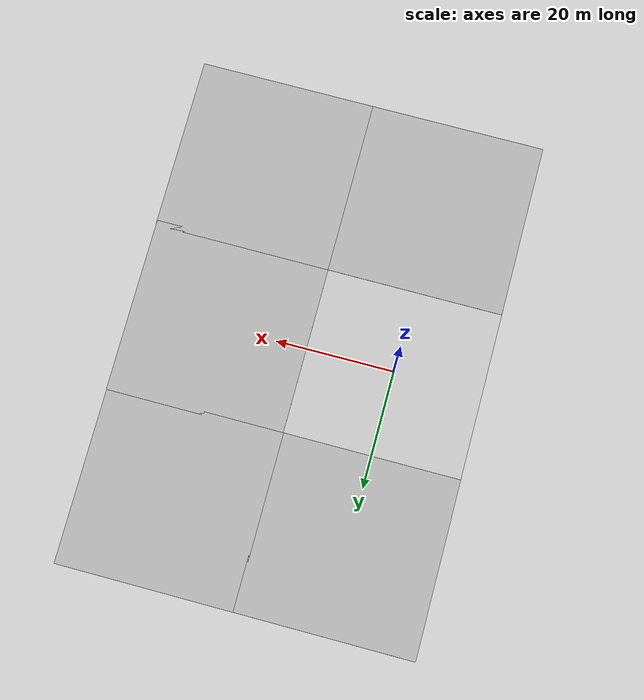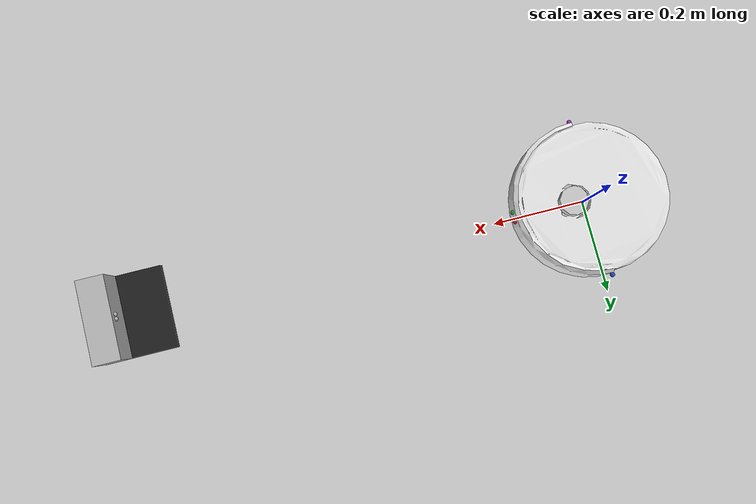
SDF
<sdf version="1.7">
 <world name="default">
  <model name="ISCAS_groundplane">
   <static>1</static>
   <link name="link">
    <collision name="collision">
     <geometry><plane><normal>0 0 1</normal><size>30 30</size></plane></geometry>
     <surface><friction><ode><mu>100</mu><mu2>50</mu2></ode></friction></surface>
    </collision>
    <visual name="visual">
     <cast_shadows>0</cast_shadows>
     <geometry><plane><normal>0 0 1</normal><size>30 30</size></plane></geometry>
     <material>
      <script>
       <uri>model://ISCAS_groundplane/materials/scripts</uri>
       <uri>model://ISCAS_groundplane/materials/textures</uri>
       <name>ISCAS_groundplane/Image</name>
      </script>
     </material>
    </visual>
   </link>
  </model>
  <light name="sun" type="directional">
   <pose>0 0 10 0 -0 0</pose>
   <diffuse>0.8 0.8 0.8 1</diffuse>
   <specular>0.2 0.2 0.2 1</specular>
   <attenuation>
    <range>1000</range>
    <constant>0.9</constant>
    <linear>0.01</linear>
    <quadratic>0.001</quadratic>
   </attenuation>
   <direction>-0.5 0.1 -0.9</direction>
   <spot><inner_angle>0</inner_angle><outer_angle>0</outer_angle><falloff>0</falloff></spot>
  </light>
  <gravity>0 0 -9.8</gravity>
  <magnetic_field>6e-06 2.3e-05 -4.2e-05</magnetic_field>
  <atmosphere type="adiabatic"/>
  <physics type="ode">
   <max_step_size>0.001</max_step_size>
   <real_time_factor>1</real_time_factor>
   <real_time_update_rate>1000</real_time_update_rate>
  </physics>
  <scene><ambient>0.4 0.4 0.4 1</ambient><background>0.7 0.7 0.7 1</background><shadows>1</shadows></scene>
  <spherical_coordinates>
   <surface_model>EARTH_WGS84</surface_model>
   <latitude_deg>0</latitude_deg>
   <longitude_deg>0</longitude_deg>
   <elevation>0</elevation>
   <heading_deg>0</heading_deg>
  </spherical_coordinates>
  <model name="dock">
   <link name="bottom">
    <inertial>
     <pose>0 0.01875 0 0 -0 0</pose>
     <mass>0.8</mass>
     <inertia>
      <ixx>0.00279292</ixx>
      <ixy>0</ixy>
      <ixz>0</ixz>
      <iyy>0.00132083</iyy>
      <iyz>0</iyz>
      <izz>0.00378542</izz>
     </inertia>
    </inertial>
    <collision name="bottom_collision">
     <pose>0 0 0.005 0 -0 0</pose>
     <geometry><box><size>0.18 0.16 0.01</size></box></geometry>
     <surface>
      <contact><ode><kp>1000</kp><kd>1</kd><min_depth>0.001</min_depth></ode></contact>
      <friction><ode><mu>20</mu><mu2>10</mu2></ode></friction>
     </surface>
    </collision>
    <collision name="bottom_fixed_joint_lump__base_collision_1">
     <pose>0 0.05 0.04 0 -0 0</pose>
     <geometry><box><size>0.18 0.06 0.08</size></box></geometry>
    </collision>
    <visual name="bottom_visual">
     <pose>0 0 0.005 0 -0 0</pose>
     <geometry><box><size>0.18 0.16 0.01</size></box></geometry>
     <material>
      <script><name>Gazebo/Black</name><uri>file://media/materials/scripts/gazebo.material</uri></script>
     </material>
    </visual>
    <visual name="bottom_fixed_joint_lump__base_visual_1">
     <pose>0 0.05 0.04 0 -0 0</pose>
     <geometry><box><size>0.18 0.06 0.08</size></box></geometry>
    </visual>
    <visual name="bottom_fixed_joint_lump__dock_right_visual_2">
     <pose>0.005 0.02 0.06 0 0 -1.57</pose>
     <geometry><sphere><radius>0.005</radius></sphere></geometry>
    </visual>
    <visual name="bottom_fixed_joint_lump__dock_left_visual_3">
     <pose>-0.005 0.02 0.06 0 0 -1.57</pose>
     <geometry><sphere><radius>0.005</radius></sphere></geometry>
    </visual>
    <sensor name="ir_right" type="camera">
     <camera>
      <clip><near>0.02</near><far>2.5</far></clip>
      <image><width>20</width><height>20</height></image>
      <horizontal_fov>0.02</horizontal_fov>
      <aspect_ratio>1</aspect_ratio>
     </camera>
     <visualize>0</visualize>
     <always_on>1</always_on>
     <update_rate>10</update_rate>
     <topic>dockir/A3</topic>
     <plugin name="camera_r" filename="libgazebo_ros_camera.so">
      <alwaysOn>1</alwaysOn>
      <updateRate>10.0</updateRate>
      <cameraName>dock/right</cameraName>
      <imageTopicName>image_raw</imageTopicName>
      <cameraInfoTopicName>camera_info</cameraInfoTopicName>
      <frameName>dock_right</frameName>
      <robotNamespace>/</robotNamespace>
     </plugin>
     <pose>0.005 0.02 0.06 0 0 -1.57</pose>
    </sensor>
    <sensor name="ir_left" type="camera">
     <camera>
      <clip><near>0.02</near><far>2.5</far></clip>
      <image><width>20</width><height>20</height></image>
      <horizontal_fov>0.02</horizontal_fov>
      <aspect_ratio>1</aspect_ratio>
     </camera>
     <visualize>1</visualize>
     <always_on>1</always_on>
     <update_rate>10</update_rate>
     <topic>dockir/A3</topic>
     <plugin name="camera_l" filename="libgazebo_ros_camera.so">
      <alwaysOn>1</alwaysOn>
      <updateRate>10.0</updateRate>
      <cameraName>dock/left</cameraName>
      <imageTopicName>image_raw</imageTopicName>
      <cameraInfoTopicName>camera_info</cameraInfoTopicName>
      <frameName>dock_left</frameName>
      <robotNamespace>/</robotNamespace>
     </plugin>
     <pose>-0.005 0.02 0.06 0 0 -1.57</pose>
    </sensor>
   </link>
   <pose>1.00059 -0.0006 -0 1.8e-05 -0 -1.57489</pose>
  </model>
  <model name="robot">
   <link name="base_link">
    <inertial>
     <pose>0 0 0.045 0 -0 0</pose>
     <mass>0.4</mass>
     <inertia>
      <ixx>0.00305333</ixx>
      <ixy>0</ixy>
      <ixz>0</ixz>
      <iyy>0.00305333</iyy>
      <iyz>0</iyz>
      <izz>0.00578</izz>
     </inertia>
    </inertial>
    <collision name="base_link_fixed_joint_lump__boby_collision_collision">
     <pose>0 0 0.045 0 -0 0</pose>
     <geometry><cylinder><length>0.07</length><radius>0.17</radius></cylinder></geometry>
    </collision>
    <collision name="base_link_fixed_joint_lump__collision_collision_1">
     <pose>0.045 0 0.08 0 -0 0</pose>
     <geometry><cylinder><length>0.017</length><radius>0.029</radius></cylinder></geometry>
    </collision>
    <visual name="base_link_fixed_joint_lump__body_visual">
     <pose>0 0 0.045 0 -0 0</pose>
     <geometry>
      <mesh>
       <scale>1 1 1</scale>
       <uri>/home/hyj/ARM/linux_app_my/rosws/src/sweeper_description/meshes/RobotBody.dae</uri>
      </mesh>
     </geometry>
     <material>
      <script><name>Gazebo/White</name><uri>file://media/materials/scripts/gazebo.material</uri></script>
     </material>
    </visual>
    <visual name="base_link_fixed_joint_lump__imu_link_visual_1">
     <pose>0 0 0.045 0 -0 0</pose>
     <geometry><cylinder><length>0.001</length><radius>0.001</radius></cylinder></geometry>
    </visual>
    <visual name="base_link_fixed_joint_lump__ir_recevier_fl_visual_2">
     <pose>0.166699 0.010014 0.06 0 -0 0.06</pose>
     <geometry><sphere><radius>0.005</radius></sphere></geometry>
     <material>
      <script><name>Gazebo/Red</name><uri>file://media/materials/scripts/gazebo.material</uri></script>
     </material>
    </visual>
    <visual name="base_link_fixed_joint_lump__ir_recevier_fr_visual_3">
     <pose>0.166699 -0.010014 0.06 0 0 -0.06</pose>
     <geometry><sphere><radius>0.005</radius></sphere></geometry>
     <material>
      <script><name>Gazebo/Green</name><uri>file://media/materials/scripts/gazebo.material</uri></script>
     </material>
    </visual>
    <visual name="base_link_fixed_joint_lump__ir_recevier_l_visual_4">
     <pose>0 0.167 0.06 0 -0 1.57079</pose>
     <geometry><sphere><radius>0.005</radius></sphere></geometry>
     <material>
      <script><name>Gazebo/Blue</name><uri>file://media/materials/scripts/gazebo.material</uri></script>
     </material>
    </visual>
    <visual name="base_link_fixed_joint_lump__ir_recevier_r_visual_5">
     <pose>0 -0.167 0.06 0 0 -1.57079</pose>
     <geometry><sphere><radius>0.005</radius></sphere></geometry>
     <material>
      <script><name>Gazebo/Purple</name><uri>file://media/materials/scripts/gazebo.material</uri></script>
     </material>
    </visual>
    <visual name="base_link_fixed_joint_lump__laser_visual_visual_6">
     <pose>0.045 0 0.08 0 -0 0</pose>
     <geometry>
      <mesh>
       <scale>1 1 1</scale>
       <uri>/home/hyj/ARM/linux_app_my/rosws/src/sweeper_description/meshes/RobotLidar.dae</uri>
      </mesh>
     </geometry>
    </visual>
    <sensor name="main_bumper" type="contact">
     <contact>
      <collision>base_link_fixed_joint_lump__boby_collision_collision</collision>
      <topic>__default_topic__</topic>
     </contact>
     <plugin name="gazebo_ros_bumper_controller" filename="libgazebo_ros_bumper.so">
      <selfCollide>1</selfCollide>
      <alwaysOn>1</alwaysOn>
      <updateRate>20.0</updateRate>
      <bumperTopicName>/bumper</bumperTopicName>
      <frameName>base_link</frameName>
      <robotNamespace>/</robotNamespace>
     </plugin>
     <pose>0 0 0.045 0 -0 0</pose>
    </sensor>
    <sensor name="imu_sensor" type="imu">
     <always_on>1</always_on>
     <update_rate>100</update_rate>
     <visualize>1</visualize>
     <topic>__default_topic__</topic>
     <plugin name="imu_plugin" filename="libgazebo_ros_imu_sensor.so">
      <topicName>/imu</topicName>
      <bodyName>imu_link</bodyName>
      <updateRateHZ>50.0</updateRateHZ>
      <gaussianNoise>0.0</gaussianNoise>
      <xyzOffset>0 0 0</xyzOffset>
      <rpyOffset>0 0 0</rpyOffset>
      <frameName>imu_link</frameName>
      <initialOrientationAsReference>0</initialOrientationAsReference>
      <robotNamespace>/</robotNamespace>
     </plugin>
     <pose>0 0 0.045 0 -0 0</pose>
    </sensor>
    <sensor name="ir_front_sensor" type="ray">
     <visualize>1</visualize>
     <update_rate>20</update_rate>
     <ray>
      <scan>
       <horizontal>
        <samples>10</samples>
        <resolution>1</resolution>
        <min_angle>-1.0472</min_angle>
        <max_angle>1.0472</max_angle>
       </horizontal>
       <vertical><samples>1</samples><min_angle>0</min_angle><max_angle>0</max_angle></vertical>
      </scan>
      <range><min>0.08</min><max>0.09</max><resolution>0.01</resolution></range>
     </ray>
     <plugin name="gazebo_ros_ir_front_controller" filename="libgazebo_ros_range.so">
      <gaussianNoise>0.005</gaussianNoise>
      <alwaysOn>1</alwaysOn>
      <updateRate>20</updateRate>
      <topicName>/ir/front</topicName>
      <frameName>base_link</frameName>
      <radiation>ir</radiation>
      <fov>0.17453277777777776</fov>
      <robotNamespace>/</robotNamespace>
     </plugin>
     <pose>0.12 0 0.045 0 -0 0</pose>
    </sensor>
    <sensor name="ir_left_front_sensor" type="ray">
     <visualize>1</visualize>
     <update_rate>20</update_rate>
     <ray>
      <scan>
       <horizontal>
        <samples>10</samples>
        <resolution>1</resolution>
        <min_angle>-1.0472</min_angle>
        <max_angle>1.0472</max_angle>
       </horizontal>
       <vertical><samples>1</samples><min_angle>0</min_angle><max_angle>0</max_angle></vertical>
      </scan>
      <range><min>0.08</min><max>0.09</max><resolution>0.01</resolution></range>
     </ray>
     <plugin name="gazebo_ros_ir_left_front_controller" filename="libgazebo_ros_range.so">
      <gaussianNoise>0.005</gaussianNoise>
      <alwaysOn>1</alwaysOn>
      <updateRate>20</updateRate>
      <topicName>/ir/left_front</topicName>
      <frameName>base_link</frameName>
      <radiation>ir</radiation>
      <fov>0.17453277777777776</fov>
      <robotNamespace>/</robotNamespace>
     </plugin>
     <pose>0.084853 0.084853 0.045 0 -0 0.785397</pose>
    </sensor>
    <sensor name="ir_left_sensor" type="ray">
     <visualize>1</visualize>
     <update_rate>20</update_rate>
     <ray>
      <scan>
       <horizontal>
        <samples>10</samples>
        <resolution>1</resolution>
        <min_angle>-0.0872664</min_angle>
        <max_angle>0.0872664</max_angle>
       </horizontal>
       <vertical><samples>1</samples><min_angle>0</min_angle><max_angle>0</max_angle></vertical>
      </scan>
      <range><min>0.01</min><max>0.26</max><resolution>0.01</resolution></range>
     </ray>
     <plugin name="gazebo_ros_ir_left_controller" filename="libgazebo_ros_range.so">
      <gaussianNoise>0.005</gaussianNoise>
      <alwaysOn>1</alwaysOn>
      <updateRate>20</updateRate>
      <topicName>/ir/left</topicName>
      <frameName>base_link</frameName>
      <radiation>ir</radiation>
      <fov>0.17453277777777776</fov>
      <robotNamespace>/</robotNamespace>
     </plugin>
     <pose>0 0.17 0.045 0 -0 1.57079</pose>
    </sensor>
    <sensor name="ir_right_front_sensor" type="ray">
     <visualize>1</visualize>
     <update_rate>20</update_rate>
     <ray>
      <scan>
       <horizontal>
        <samples>10</samples>
        <resolution>1</resolution>
        <min_angle>-1.0472</min_angle>
        <max_angle>1.0472</max_angle>
       </horizontal>
       <vertical><samples>1</samples><min_angle>0</min_angle><max_angle>0</max_angle></vertical>
      </scan>
      <range><min>0.08</min><max>0.09</max><resolution>0.01</resolution></range>
     </ray>
     <plugin name="gazebo_ros_ir_right_front_controller" filename="libgazebo_ros_range.so">
      <gaussianNoise>0.005</gaussianNoise>
      <alwaysOn>1</alwaysOn>
      <updateRate>20</updateRate>
      <topicName>/ir/right_front</topicName>
      <frameName>base_link</frameName>
      <radiation>ir</radiation>
      <fov>0.17453277777777776</fov>
      <robotNamespace>/</robotNamespace>
     </plugin>
     <pose>0.084853 -0.084853 0.045 0 0 -0.785397</pose>
    </sensor>
    <sensor name="ir_right_sensor" type="ray">
     <visualize>1</visualize>
     <update_rate>20</update_rate>
     <ray>
      <scan>
       <horizontal>
        <samples>10</samples>
        <resolution>1</resolution>
        <min_angle>-0.0872664</min_angle>
        <max_angle>0.0872664</max_angle>
       </horizontal>
       <vertical><samples>1</samples><min_angle>0</min_angle><max_angle>0</max_angle></vertical>
      </scan>
      <range><min>0.01</min><max>0.26</max><resolution>0.01</resolution></range>
     </ray>
     <plugin name="gazebo_ros_ir_right_controller" filename="libgazebo_ros_range.so">
      <gaussianNoise>0.005</gaussianNoise>
      <alwaysOn>1</alwaysOn>
      <updateRate>20</updateRate>
      <topicName>/ir/right</topicName>
      <frameName>base_link</frameName>
      <radiation>ir</radiation>
      <fov>0.17453277777777776</fov>
      <robotNamespace>/</robotNamespace>
     </plugin>
     <pose>0 -0.17 0.045 0 0 -1.57079</pose>
    </sensor>
    <sensor name="eai_lidar" type="ray">
     <visualize>0</visualize>
     <update_rate>5</update_rate>
     <ray>
      <scan>
       <horizontal>
        <samples>360</samples>
        <resolution>1</resolution>
        <min_angle>0</min_angle>
        <max_angle>6.28318</max_angle>
       </horizontal>
       <vertical><samples>1</samples><min_angle>0</min_angle><max_angle>0</max_angle></vertical>
      </scan>
      <range><min>0.1</min><max>8</max><resolution>0.01</resolution></range>
      <noise><type>gaussian</type><mean>0</mean><stddev>0.01</stddev></noise>
     </ray>
     <plugin name="gazebo_ros_lidar_controller" filename="libgazebo_ros_laser.so">
      <topicName>/scan</topicName>
      <frameName>lidar_link</frameName>
      <robotNamespace>/</robotNamespace>
     </plugin>
     <pose>0.045 0 0.085 0 -0 0</pose>
    </sensor>
   </link>
   <joint name="back_omni_to_base" type="revolute">
    <pose relative_to="base_link">-0.11 0 0.01 0 -0 0</pose>
    <parent>base_link</parent>
    <child>back_omni</child>
    <axis>
     <xyz>0 1 0</xyz>
     <limit><lower>-1e+16</lower><upper>1e+16</upper></limit>
     <dynamics><spring_reference>0</spring_reference><spring_stiffness>0</spring_stiffness></dynamics>
    </axis>
   </joint>
   <link name="back_omni">
    <pose relative_to="back_omni_to_base">0 0 0 0 -0 0</pose>
    <inertial>
     <mass>0.1</mass>
     <inertia><ixx>4e-06</ixx><ixy>0</ixy><ixz>0</ixz><iyy>4e-06</iyy><iyz>0</iyz><izz>4e-06</izz></inertia>
    </inertial>
    <collision name="back_omniwheel_collision">
     <geometry><sphere><radius>0.01</radius></sphere></geometry>
     <surface>
      <contact><ode><kp>1e+07</kp><kd>10</kd><max_vel>1</max_vel><min_depth>0</min_depth></ode></contact>
      <friction><ode><mu>0</mu><mu2>0</mu2><fdir1>1 0 0</fdir1></ode></friction>
     </surface>
    </collision>
    <visual name="back_omni_visual">
     <geometry><sphere><radius>0.01</radius></sphere></geometry>
     <material>
      <script><name>Gazebo/Black</name><uri>file://media/materials/scripts/gazebo.material</uri></script>
     </material>
    </visual>
   </link>
   <joint name="front_omni_to_base" type="revolute">
    <pose relative_to="base_link">0.11 0 0.01 0 -0 0</pose>
    <parent>base_link</parent>
    <child>front_omni</child>
    <axis>
     <xyz>0 1 0</xyz>
     <limit><lower>-1e+16</lower><upper>1e+16</upper></limit>
     <dynamics><spring_reference>0</spring_reference><spring_stiffness>0</spring_stiffness></dynamics>
    </axis>
   </joint>
   <link name="front_omni">
    <pose relative_to="front_omni_to_base">0 0 0 0 -0 0</pose>
    <inertial>
     <mass>0.1</mass>
     <inertia><ixx>4e-06</ixx><ixy>0</ixy><ixz>0</ixz><iyy>4e-06</iyy><iyz>0</iyz><izz>4e-06</izz></inertia>
    </inertial>
    <collision name="front_omniwheel_collision">
     <geometry><sphere><radius>0.01</radius></sphere></geometry>
     <surface>
      <contact><ode><kp>1e+07</kp><kd>10</kd><max_vel>1</max_vel><min_depth>0</min_depth></ode></contact>
      <friction><ode><mu>0</mu><mu2>0</mu2><fdir1>1 0 0</fdir1></ode></friction>
     </surface>
    </collision>
    <visual name="front_omni_visual">
     <geometry><sphere><radius>0.01</radius></sphere></geometry>
     <material>
      <script><name>Gazebo/Black</name><uri>file://media/materials/scripts/gazebo.material</uri></script>
     </material>
    </visual>
   </link>
   <joint name="left_wheel_joint" type="revolute">
    <pose relative_to="base_link">0 0.13 0.033 0 -0 0</pose>
    <parent>base_link</parent>
    <child>left_wheel</child>
    <axis>
     <xyz>0 1 0</xyz>
     <limit><lower>-1e+16</lower><upper>1e+16</upper></limit>
     <dynamics><spring_reference>0</spring_reference><spring_stiffness>0</spring_stiffness></dynamics>
    </axis>
   </joint>
   <link name="left_wheel">
    <pose relative_to="left_wheel_joint">0 0 0 0 -0 0</pose>
    <inertial>
     <mass>0.2</mass>
     <inertia>
      <ixx>5.87167e-05</ixx>
      <ixy>0</ixy>
      <ixz>0</ixz>
      <iyy>5.87167e-05</iyy>
      <iyz>0</iyz>
      <izz>0.0001089</izz>
     </inertia>
    </inertial>
    <collision name="left_wheel_collision_collision">
     <pose>0 0 0 1.57089 1.57079 -3.14159</pose>
     <geometry><cylinder><length>0.016</length><radius>0.033</radius></cylinder></geometry>
     <surface>
      <contact><ode><kp>1e+07</kp><kd>10</kd><max_vel>1</max_vel><min_depth>0</min_depth></ode></contact>
      <friction><ode><mu>800</mu><mu2>400</mu2><fdir1>1 0 0</fdir1></ode></friction>
     </surface>
    </collision>
    <visual name="left_wheel_visual">
     <pose>0 0 0 1.57089 1.57079 -3.14159</pose>
     <geometry>
      <mesh>
       <scale>1 1 1</scale>
       <uri>/home/hyj/ARM/linux_app_my/rosws/src/sweeper_description/meshes/RobotWheel.dae</uri>
      </mesh>
     </geometry>
     <material>
      <script><name>Gazebo/Black</name><uri>file://media/materials/scripts/gazebo.material</uri></script>
     </material>
    </visual>
   </link>
   <joint name="right_wheel_joint" type="revolute">
    <pose relative_to="base_link">0 -0.13 0.033 0 -0 0</pose>
    <parent>base_link</parent>
    <child>right_wheel</child>
    <axis>
     <xyz>0 1 0</xyz>
     <limit><lower>-1e+16</lower><upper>1e+16</upper></limit>
     <dynamics><spring_reference>0</spring_reference><spring_stiffness>0</spring_stiffness></dynamics>
    </axis>
   </joint>
   <link name="right_wheel">
    <pose relative_to="right_wheel_joint">0 0 0 0 -0 0</pose>
    <inertial>
     <mass>0.2</mass>
     <inertia>
      <ixx>5.87167e-05</ixx>
      <ixy>0</ixy>
      <ixz>0</ixz>
      <iyy>5.87167e-05</iyy>
      <iyz>0</iyz>
      <izz>0.0001089</izz>
     </inertia>
    </inertial>
    <collision name="right_wheel_collision_collision">
     <pose>0 0 0 1.57089 1.57079 -3.14159</pose>
     <geometry><cylinder><length>0.016</length><radius>0.033</radius></cylinder></geometry>
     <surface>
      <contact><ode><kp>1e+07</kp><kd>10</kd><max_vel>1</max_vel><min_depth>0</min_depth></ode></contact>
      <friction><ode><mu>800</mu><mu2>400</mu2><fdir1>1 0 0</fdir1></ode></friction>
     </surface>
    </collision>
    <visual name="right_wheel_visual">
     <pose>0 0 0 1.57089 1.57079 -3.14159</pose>
     <geometry>
      <mesh>
       <scale>1 1 1</scale>
       <uri>/home/hyj/ARM/linux_app_my/rosws/src/sweeper_description/meshes/RobotWheel.dae</uri>
      </mesh>
     </geometry>
     <material>
      <script><name>Gazebo/Black</name><uri>file://media/materials/scripts/gazebo.material</uri></script>
     </material>
    </visual>
   </link>
   <static>0</static>
   <plugin name="gazebo_ros_control" filename="libgazebo_ros_control.so">
    <robotNamespace>/</robotNamespace>
    <legacyModeNS>1</legacyModeNS>
   </plugin>
   <pose>-0.000618 0.000944 2e-06 -3e-06 1.2e-05 0.000336</pose>
  </model>
  <model name="ISCAS_groundplane_0">
   <static>1</static>
   <link name="link">
    <collision name="collision">
     <geometry><plane><normal>0 0 1</normal><size>30 30</size></plane></geometry>
     <surface><friction><ode><mu>100</mu><mu2>50</mu2></ode></friction></surface>
    </collision>
    <visual name="visual">
     <cast_shadows>0</cast_shadows>
     <geometry><plane><normal>0 0 1</normal><size>30 30</size></plane></geometry>
     <material>
      <script>
       <uri>model://ISCAS_groundplane/materials/scripts</uri>
       <uri>model://ISCAS_groundplane/materials/textures</uri>
       <name>ISCAS_groundplane/Image</name>
      </script>
     </material>
    </visual>
   </link>
   <pose>-0.00448 29.418 0 0 -0 0</pose>
  </model>
  <model name="ISCAS_groundplane_1">
   <static>1</static>
   <link name="link">
    <collision name="collision">
     <geometry><plane><normal>0 0 1</normal><size>30 30</size></plane></geometry>
     <surface><friction><ode><mu>100</mu><mu2>50</mu2></ode></friction></surface>
    </collision>
    <visual name="visual">
     <cast_shadows>0</cast_shadows>
     <geometry><plane><normal>0 0 1</normal><size>30 30</size></plane></geometry>
     <material>
      <script>
       <uri>model://ISCAS_groundplane/materials/scripts</uri>
       <uri>model://ISCAS_groundplane/materials/textures</uri>
       <name>ISCAS_groundplane/Image</name>
      </script>
     </material>
    </visual>
   </link>
   <pose>29.7865 29.4353 0 0 -0 0</pose>
  </model>
  <model name="ISCAS_groundplane_2">
   <static>1</static>
   <link name="link">
    <collision name="collision">
     <geometry><plane><normal>0 0 1</normal><size>30 30</size></plane></geometry>
     <surface><friction><ode><mu>100</mu><mu2>50</mu2></ode></friction></surface>
    </collision>
    <visual name="visual">
     <cast_shadows>0</cast_shadows>
     <geometry><plane><normal>0 0 1</normal><size>30 30</size></plane></geometry>
     <material>
      <script>
       <uri>model://ISCAS_groundplane/materials/scripts</uri>
       <uri>model://ISCAS_groundplane/materials/textures</uri>
       <name>ISCAS_groundplane/Image</name>
      </script>
     </material>
    </visual>
   </link>
   <pose>29.8457 0.029066 0 0 -0 0</pose>
  </model>
  <model name="ISCAS_groundplane_3">
   <static>1</static>
   <link name="link">
    <collision name="collision">
     <geometry><plane><normal>0 0 1</normal><size>30 30</size></plane></geometry>
     <surface><friction><ode><mu>100</mu><mu2>50</mu2></ode></friction></surface>
    </collision>
    <visual name="visual">
     <cast_shadows>0</cast_shadows>
     <geometry><plane><normal>0 0 1</normal><size>30 30</size></plane></geometry>
     <material>
      <script>
       <uri>model://ISCAS_groundplane/materials/scripts</uri>
       <uri>model://ISCAS_groundplane/materials/textures</uri>
       <name>ISCAS_groundplane/Image</name>
      </script>
     </material>
    </visual>
   </link>
   <pose>29.8927 -29.0654 0 0 -0 0</pose>
  </model>
  <model name="ISCAS_groundplane_4">
   <static>1</static>
   <link name="link">
    <collision name="collision">
     <geometry><plane><normal>0 0 1</normal><size>30 30</size></plane></geometry>
     <surface><friction><ode><mu>100</mu><mu2>50</mu2></ode></friction></surface>
    </collision>
    <visual name="visual">
     <cast_shadows>0</cast_shadows>
     <geometry><plane><normal>0 0 1</normal><size>30 30</size></plane></geometry>
     <material>
      <script>
       <uri>model://ISCAS_groundplane/materials/scripts</uri>
       <uri>model://ISCAS_groundplane/materials/textures</uri>
       <name>ISCAS_groundplane/Image</name>
      </script>
     </material>
    </visual>
   </link>
   <pose>0.024045 -29.0695 0 0 -0 0</pose>
  </model>
 </world>
</sdf>
